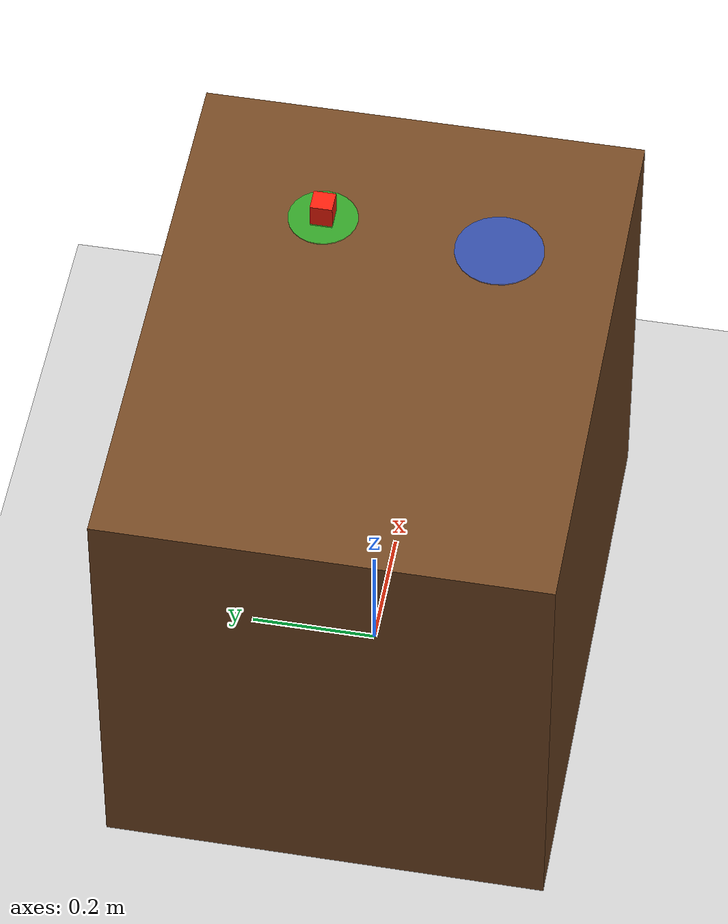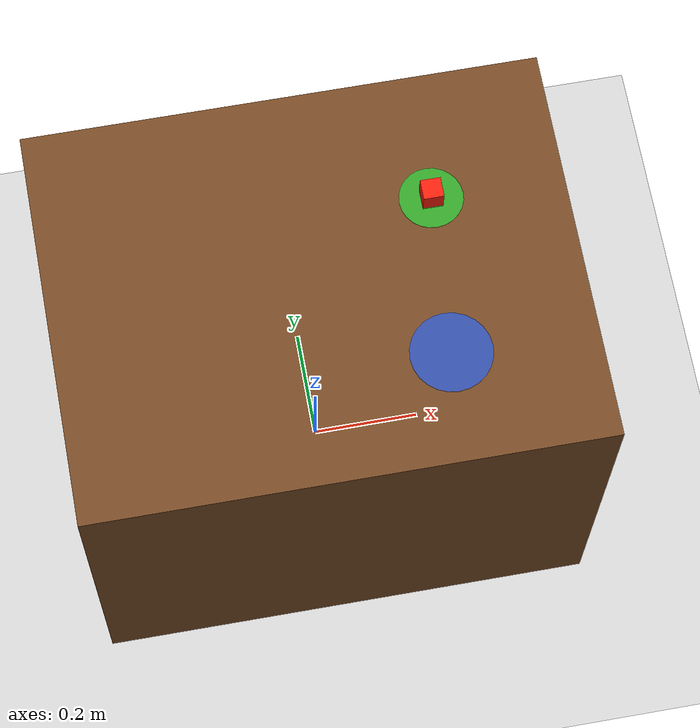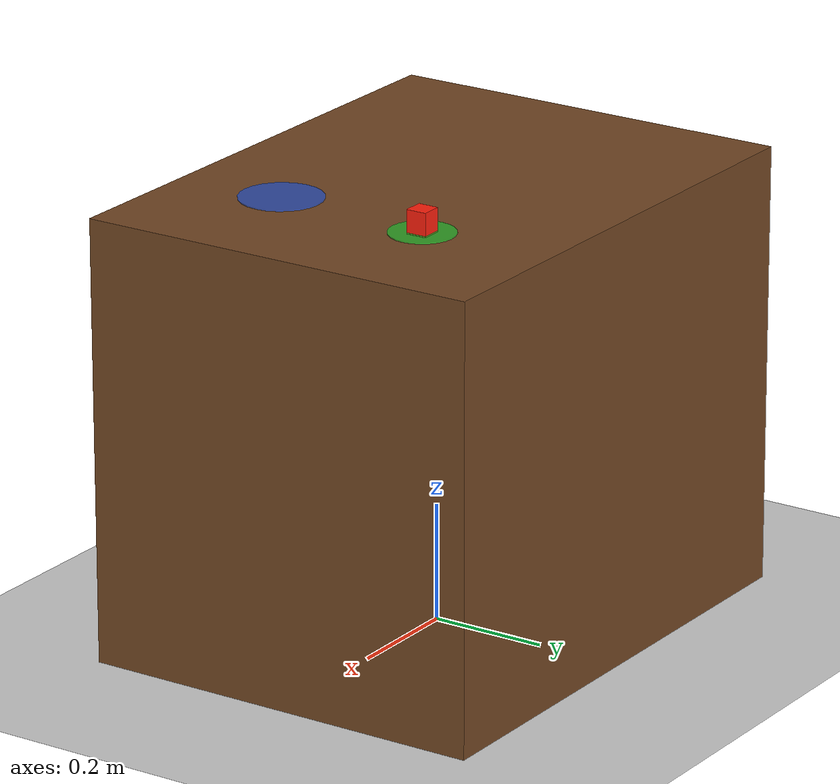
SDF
<?xml version="1.0"?>
<sdf version="1.7">
  <world name="pick_place_world">
    <gravity>0 0 -9.81</gravity>
    <physics type="ode">
      <real_time_update_rate>1000</real_time_update_rate>
      <max_step_size>0.001</max_step_size>
      <real_time_factor>1.0</real_time_factor>
      <ode>
        <solver><type>quick</type><iters>80</iters><sor>1.3</sor></solver>
        <constraints><cfm>0</cfm><erp>0.2</erp><contact_max_correcting_vel>0.1</contact_max_correcting_vel></constraints>
      </ode>
    </physics>
    <scene>
      <ambient>0.55 0.55 0.58 1</ambient>
      <background>0.08 0.10 0.14 1</background>
      <shadows>true</shadows>
    </scene>
    <plugin name="gazebo_ros_state" filename="libgazebo_ros_state.so">
      <ros><namespace>/gazebo</namespace></ros>
      <update_rate>100.0</update_rate>
    </plugin>

    <include><uri>model://sun</uri></include>
    <include><uri>model://ground_plane</uri></include>

    <model name="work_table">
      <static>true</static>
      <pose>0 0 0.375 0 0 0</pose>
      <link name="table">
        <collision name="table_collision"><geometry><box><size>0.9 0.7 0.75</size></box></geometry></collision>
        <visual name="table_visual"><geometry><box><size>0.9 0.7 0.75</size></box></geometry><material><ambient>0.34 0.20 0.10 1</ambient><diffuse>0.45 0.28 0.14 1</diffuse></material></visual>
        <sensor type="contact" name="table_contact_sensor">
          <always_on>true</always_on><update_rate>100</update_rate>
          <contact><collision>table_collision</collision></contact>
          <plugin name="table_contact_publisher" filename="libgazebo_ros_bumper.so">
            <ros><namespace>/gazebo</namespace><remapping>bumper_states:=contacts/table</remapping></ros>
            <frame_name>world</frame_name>
          </plugin>
        </sensor>
      </link>
    </model>

    <model name="pickup_zone_A">
      <static>true</static><pose>0.22 0.12 0.751 0 0 0</pose>
      <link name="zone"><visual name="visual"><geometry><cylinder><radius>0.055</radius><length>0.002</length></cylinder></geometry><material><ambient>0.1 0.85 0.2 0.65</ambient><diffuse>0.1 0.85 0.2 0.65</diffuse></material></visual></link>
    </model>

    <model name="place_zone_B">
      <static>true</static><pose>0.20 -0.16 0.751 0 0 0</pose>
      <link name="zone"><visual name="visual"><geometry><cylinder><radius>0.07</radius><length>0.002</length></cylinder></geometry><material><ambient>0.1 0.35 0.95 0.65</ambient><diffuse>0.1 0.35 0.95 0.65</diffuse></material></visual></link>
    </model>

    <model name="target_object">
      <pose>0.22 0.12 0.77 0 0 0</pose>
      <link name="object">
        <inertial><mass>0.05</mass><inertia><ixx>0.000013</ixx><iyy>0.000013</iyy><izz>0.000013</izz></inertia></inertial>
        <collision name="object_collision">
          <geometry><box><size>0.035 0.035 0.04</size></box></geometry>
          <surface><friction><ode><mu>1.6</mu><mu2>1.6</mu2></ode></friction><contact><ode><kp>100000</kp><kd>10</kd><max_vel>0.1</max_vel><min_depth>0.0005</min_depth></ode></contact></surface>
        </collision>
        <visual name="visual"><geometry><box><size>0.035 0.035 0.04</size></box></geometry><material><ambient>0.95 0.08 0.04 1</ambient><diffuse>1 0.12 0.05 1</diffuse></material></visual>
        <sensor type="contact" name="target_contact_sensor">
          <always_on>true</always_on><update_rate>100</update_rate>
          <contact><collision>object_collision</collision></contact>
          <plugin name="target_contact_publisher" filename="libgazebo_ros_bumper.so">
            <ros><namespace>/gazebo</namespace><remapping>bumper_states:=contacts/target</remapping></ros>
            <frame_name>world</frame_name>
          </plugin>
        </sensor>
      </link>
    </model>

    <model name="grasp_plugin_carrier">
      <static>true</static><pose>0 0 -10 0 0 0</pose><link name="carrier"/>
      <plugin name="robot_grasp_joint" filename="librobot_grasp_joint.so">
        <ros><namespace>/</namespace></ros>
        <robot_model>mecharm270</robot_model><parent_link>tool0</parent_link>
        <target_model>target_object</target_model><target_link>object</target_link>
        <joint_name>physical_grasp_joint</joint_name>
        <contact_topic>/gazebo/contacts/target</contact_topic>
        <target_collision_token>target_object::</target_collision_token>
        <left_finger_collision_token>left_finger::</left_finger_collision_token>
        <right_finger_collision_token>right_finger::</right_finger_collision_token>
        <require_bilateral_contact>true</require_bilateral_contact>
        <contact_timeout>0.5</contact_timeout><max_attach_distance>0.10</max_attach_distance>
        <command_timeout>2.0</command_timeout>
        <attach_service>/grasp/attach</attach_service><detach_service>/grasp/detach</detach_service>
        <status_service>/grasp/status</status_service><state_topic>/grasp/state</state_topic>
      </plugin>
    </model>
  </world>
</sdf>
